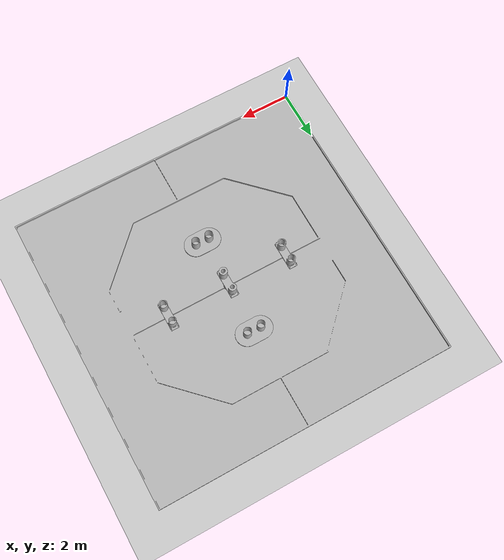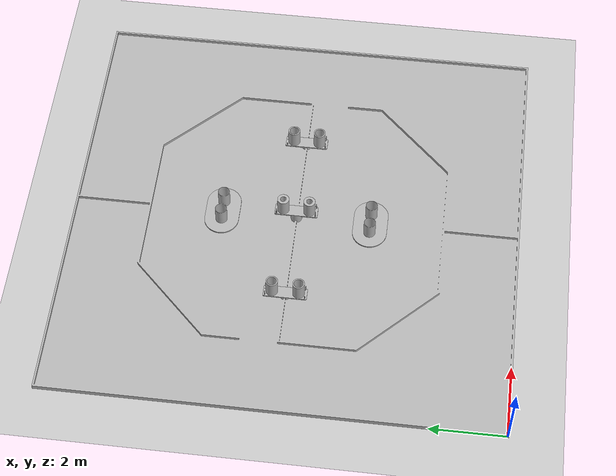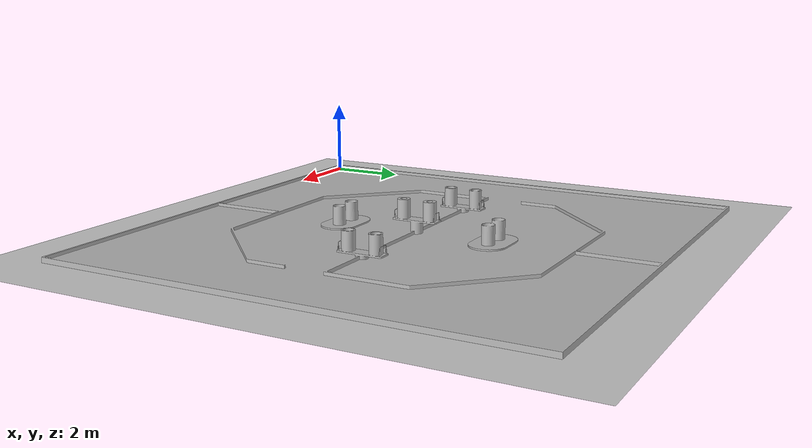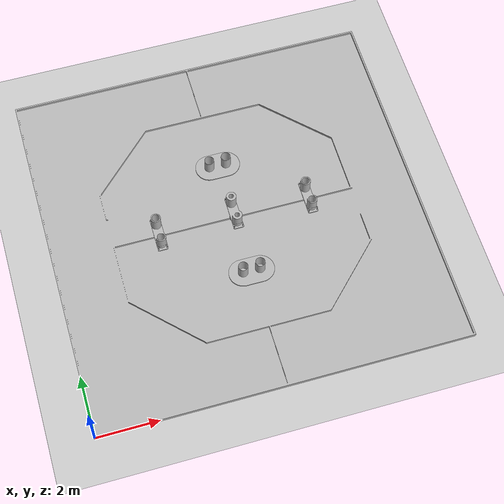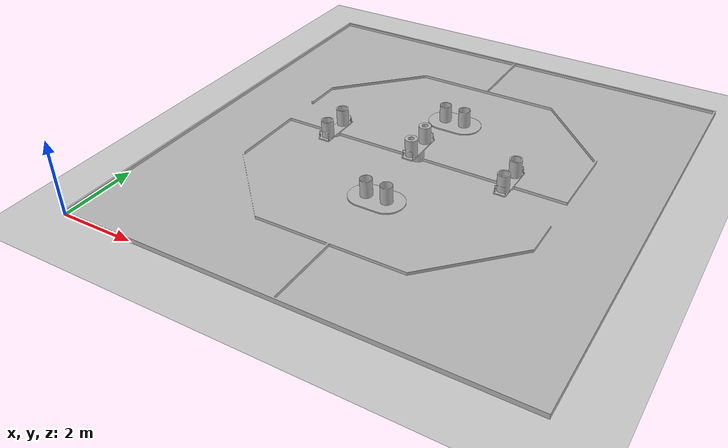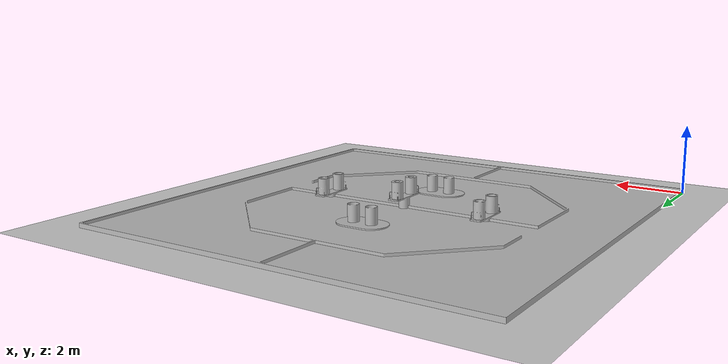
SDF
<?xml version="1.0" ?>
<sdf version="1.6">
  <world name="default">
    <include>
      <uri>model://sun</uri>
    </include>
    <include>
      <uri>model://ground_plane</uri>
    </include>
    <include>
      <uri>model://abu2021-field-assembly_v1</uri>
      <pose>0 0 0 0 0 1.57079632</pose>
    </include>
        <gui>
      <camera name='user_camera'>
        <pose frame=''>5.60 5.83 16.93 0 1.57 1.57</pose>
      </camera>
    </gui>
  </world>
</sdf>

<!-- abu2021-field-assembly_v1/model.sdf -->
<sdf version="1.6">
	<model name="abu2021-field-assembly_v1">
		<pose>0 0 0 0 0 0</pose>
		<link name="abu2021-field_v1:1">
			<pose>0.0 0.0 0.0 0.0 -0.0 0.0</pose>
			<inertial>
				<mass>59181.859355374036</mass>
				<pose>5.974000036241068 -5.978000153447726 0.027923545491539255 -0.0 -0.0 -0.0</pose>
				<inertia>
					<ixx>721828.0980594795</ixx>
					<ixy>150.58989116477966</ixy>
					<ixz>-0.00013456575870513917</ixz>
					<iyy>724566.1228817665</iyy>
					<iyz>0.00056494060754776</iyz>
					<izz>1446346.3505817468</izz>
				</inertia>
			</inertial>
			<collision name="abu2021-field_v1:1_collision">
				<geometry>
					<mesh>
						<uri>model://abu2021-field-assembly_v1/meshes/abu2021-field_v1.stl</uri>
					</mesh>
				</geometry>
			</collision>
			<visual name="abu2021-field_v1:1_visual">
				<geometry>
					<mesh>
						<uri>model://abu2021-field-assembly_v1/meshes/abu2021-field_v1.stl</uri>
					</mesh>
				</geometry>
			</visual>
		</link>
		<link name="abu2021-bot1_v1:1">
			<pose>4.3589999996125695 -5.20656565952797 0.05 -6.123233995736766e-17 -0.0 -1.5707963267948966</pose>
			<inertial>
				<mass>368.9300851066366</mass>
				<pose>0.7714343401440225 -0.3849999999999989 0.04203782341456153 0.0 -6.123233995736766e-17 1.5707963267948966</pose>
				<inertia>
					<ixx>54.89344677057266</ixx>
					<ixy>-2.9802322387695314e-12</ixy>
					<ixz>4.656612873077393e-14</ixz>
					<iyy>23.309783274757116</iyy>
					<iyz>1.5366822481155395e-12</iyz>
					<izz>72.85054373433292</izz>
				</inertia>
			</inertial>
			<collision name="abu2021-bot1_v1:1_collision">
				<geometry>
					<mesh>
						<uri>model://abu2021-field-assembly_v1/meshes/abu2021-bot1_v1.stl</uri>
					</mesh>
				</geometry>
			</collision>
			<visual name="abu2021-bot1_v1:1_visual">
				<geometry>
					<mesh>
						<uri>model://abu2021-field-assembly_v1/meshes/abu2021-bot1_v1.stl</uri>
					</mesh>
				</geometry>
			</visual>
		</link>
		<link name="abu2021-bot1_v1:2">
			<pose>7.58899999961257 -6.749434339816377 0.05000000000000007 6.123233995736766e-17 -0.0 1.5707963267948966</pose>
			<inertial>
				<mass>368.9300851066366</mass>
				<pose>0.7714343401440225 -0.3849999999999998 0.042037823414561505 -0.0 -6.123233995736766e-17 -1.5707963267948966</pose>
				<inertia>
					<ixx>54.89344677057862</ixx>
					<ixy>5.960464477539063e-12</ixy>
					<ixz>4.656612873077393e-14</ixz>
					<iyy>23.309783274757862</iyy>
					<iyz>-1.5832483768463134e-12</iyz>
					<izz>72.85054373434185</izz>
				</inertia>
			</inertial>
			<collision name="abu2021-bot1_v1:2_collision">
				<geometry>
					<mesh>
						<uri>model://abu2021-field-assembly_v1/meshes/abu2021-bot1_v1.stl</uri>
					</mesh>
				</geometry>
			</collision>
			<visual name="abu2021-bot1_v1:2_visual">
				<geometry>
					<mesh>
						<uri>model://abu2021-field-assembly_v1/meshes/abu2021-bot1_v1.stl</uri>
					</mesh>
				</geometry>
			</visual>
		</link>
		<link name="abu2021-bot2_v1:1">
			<pose>5.97399999961257 -8.477999999672173 0.05 0.0 -0.0 0.0</pose>
			<inertial>
				<mass>374.8572202871688</mass>
				<pose>-1.709388186554861e-11 -1.7763568394002505e-15 0.24847088045861426 -0.0 -0.0 -0.0</pose>
				<inertia>
					<ixx>14.292181737101078</ixx>
					<ixy>-5.960464477539063e-12</ixy>
					<ixz>-3.2838433980941775e-10</ixz>
					<iyy>51.384479815119505</iyy>
					<iyz>-3.725290298461914e-13</iyz>
					<izz>43.980991881871226</izz>
				</inertia>
			</inertial>
			<collision name="abu2021-bot2_v1:1_collision">
				<geometry>
					<mesh>
						<uri>model://abu2021-field-assembly_v1/meshes/abu2021-bot2_v1.stl</uri>
					</mesh>
				</geometry>
			</collision>
			<visual name="abu2021-bot2_v1:1_visual">
				<geometry>
					<mesh>
						<uri>model://abu2021-field-assembly_v1/meshes/abu2021-bot2_v1.stl</uri>
					</mesh>
				</geometry>
			</visual>
		</link>
		<link name="abu2021-bot2_v1:2">
			<pose>5.97399999961257 -3.477999999672173 0.05 0.0 -0.0 0.0</pose>
			<inertial>
				<mass>374.8572202871688</mass>
				<pose>-1.709388186554861e-11 0.0 0.24847088045861426 -0.0 -0.0 -0.0</pose>
				<inertia>
					<ixx>14.292181737107038</ixx>
					<ixy>0.0</ixy>
					<ixz>-3.2838433980941775e-10</ixz>
					<iyy>51.384479815119505</iyy>
					<iyz>-4.656612873077393e-14</iyz>
					<izz>43.980991881871226</izz>
				</inertia>
			</inertial>
			<collision name="abu2021-bot2_v1:2_collision">
				<geometry>
					<mesh>
						<uri>model://abu2021-field-assembly_v1/meshes/abu2021-bot2_v1.stl</uri>
					</mesh>
				</geometry>
			</collision>
			<visual name="abu2021-bot2_v1:2_visual">
				<geometry>
					<mesh>
						<uri>model://abu2021-field-assembly_v1/meshes/abu2021-bot2_v1.stl</uri>
					</mesh>
				</geometry>
			</visual>
		</link>
		<link name="abu2021-bot3_v1:1">
			<pose>5.97399999961257 -5.977999999672173 0.05 0.0 -0.0 0.0</pose>
			<inertial>
				<mass>696.9561699277069</mass>
				<pose>-5.494271704264975e-12 0.0 0.42919144707033463 -0.0 -0.0 -0.0</pose>
				<inertia>
					<ixx>36.47006958960295</ixx>
					<ixy>0.0</ixy>
					<ixz>-8.966773748397827e-10</ixz>
					<iyy>99.42483564834595</iyy>
					<iyz>0.0</iyz>
					<izz>73.41693162136077</izz>
				</inertia>
			</inertial>
			<collision name="abu2021-bot3_v1:1_collision">
				<geometry>
					<mesh>
						<uri>model://abu2021-field-assembly_v1/meshes/abu2021-bot3_v1.stl</uri>
					</mesh>
				</geometry>
			</collision>
			<visual name="abu2021-bot3_v1:1_visual">
				<geometry>
					<mesh>
						<uri>model://abu2021-field-assembly_v1/meshes/abu2021-bot3_v1.stl</uri>
					</mesh>
				</geometry>
			</visual>
		</link>
	</model>
</sdf>
